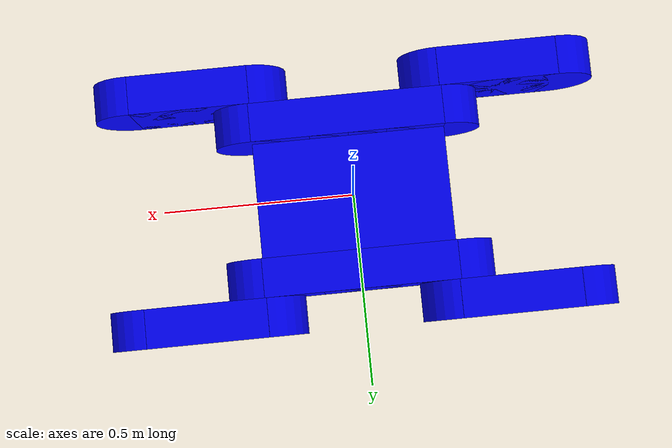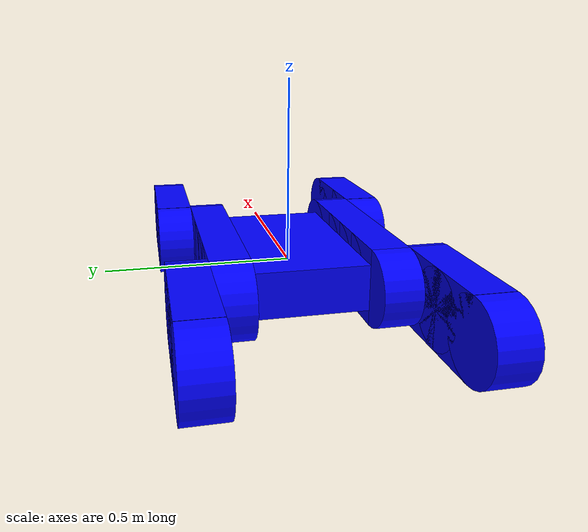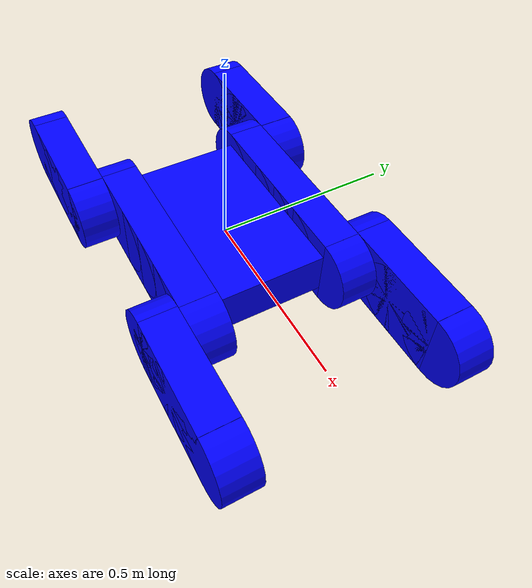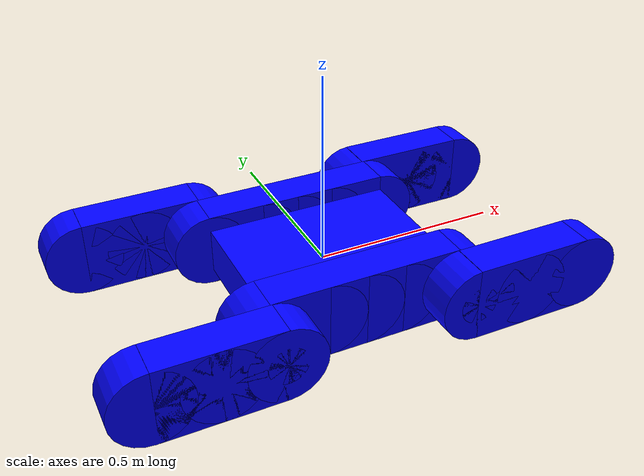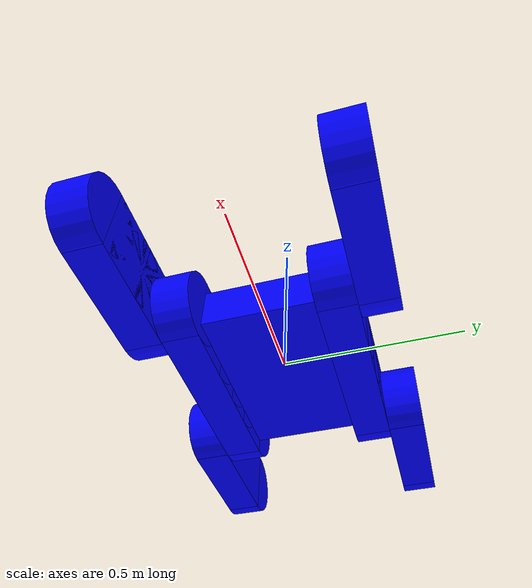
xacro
<?xml version="1.0"?>
<robot name="tank_robot" xmlns:xacro="http://www.ros.org/wiki/xacro">

  <!-- Подключаем базовую модель (шасси, колёса, флипперы и т.д.) -->
  <xacro:include filename="tank_robot_base.xacro"/>

  <!-- Подключаем описание ros2_control -->
  <xacro:include filename="tank_robot_ros2control.xacro"/>

</robot>

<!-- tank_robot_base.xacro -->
<robot name="tank_robot" xmlns:xacro="http://www.ros.org/wiki/xacro">
  <!-- 1) МАТЕРИАЛЫ                                  -->
    <material name="Gray">
    <color rgba="0.0 0.0 1.0 1.0"/>
  </material>
  <material name="Blue">
    <color rgba="0.0 0.0 1.0 1.0"/>
  </material>

  <!-- 2) МАКРОСЫ                                    -->
  <!--    - wheel_macro           Колесо базы       -->
  <!--    - flipper_base_macro    Основание флиппера-->
  <!--    - flippers_wheel_macro  Колёса на флиппере-->

  <xacro:macro name="wheel_macro" params="
    wheel_name
    parent_link
    xyz:='0 0 0'
    rpy:='-1.57 1.57 0'
    radius:='0.1'
    length:='0.1'
    mass:='0.10'
    ixx:='0.01'
    iyy:='0.01'
    izz:='0.01'
    ixy:='0.0'
    ixz='0.0'
    iyz='0.0'
  ">
    <!-- Звено колеса -->
    <link name="${wheel_name}">
      <visual>
        <geometry>
          <cylinder radius="${radius}" length="${length}"/>
        </geometry>
        <material name="Blue"/>
      </visual>
      <collision>
        <geometry>
          <cylinder radius="${radius}" length="${length}"/>
        </geometry>
      </collision>
      <inertial>
        <mass value="${mass}"/>
        <origin xyz="0 0 0" rpy="0 0 0"/>
        <inertia ixx="${ixx}" iyy="${iyy}" izz="${izz}" ixy="${ixy}" ixz="${ixz}" iyz="${iyz}"/>
      </inertial>
    </link>

    <!-- Джойнт колеса (ось вращения 0 0 1) -->
    <joint name="${wheel_name}_joint" type="continuous">
      <parent link="${parent_link}"/>
      <child link="${wheel_name}"/>
      <origin xyz="${xyz}" rpy="${rpy}"/>
      <axis xyz="0 0 1"/>
    </joint>

  </xacro:macro>

  <xacro:macro name="flipper_base_macro" params="
    wheel_name
    parent_link
    xyz:='0 0 0'
    rpy:='-1.57 0 0'
    radius:='0.05'
    length:='0.1'
    mass:='0.1'
    ixx:='0.00145833'
    iyy:='0.00145833'
    izz:='0.00125'
    ixy:='0.0'
    ixz:='0.0'
    iyz:='0.0'
  ">
    <!-- Звено основания флиппера -->
    <link name="${wheel_name}">
      <visual>
        <origin xyz="0 0 0" rpy="0 0 0"/>
        <geometry>
          <cylinder radius="${radius}" length="${length}"/>
        </geometry>
        <material name="Blue"/>
      </visual>
      <!-- (коллизию можно добавить, если нужно) -->
      <inertial>
        <mass value="${mass}"/>
      <origin xyz="${xyz}" rpy="${rpy}"/>
        <inertia ixx="${ixx}" iyy="${iyy}" izz="${izz}" ixy="${ixy}" ixz="${ixz}" iyz="${iyz}"/>
      </inertial>
    </link>

    <joint name="${wheel_name}_joint" type="continuous">
      <parent link="${parent_link}"/>
      <child link="${wheel_name}"/>
      <origin xyz="${xyz}" rpy="${rpy}"/>
      <axis xyz="0 0 1"/>
    </joint>
  </xacro:macro>

  <xacro:macro name="flippers_wheel_macro" params="
    wheel_name
    parent_link
    xyz:='0 0 0'
    rpy:='0 0 0'
    radius:='0.1'
    length:='0.1'
    mass:='0.10'
    ixx:='0.01'
    iyy:='0.01'
    izz:='0.01'
    ixy:='0.0'
    ixz:='0.0'
    iyz:='0.0'
  ">
    <!-- Звено колеса флиппера -->
    <link name="${wheel_name}">
      <visual>
        <origin xyz="0 0 0" rpy="0 0 0"/>
        <geometry>
          <cylinder radius="${radius}" length="${length}"/>
        </geometry>
        <material name="Blue"/>
      </visual>
      <collision>
        <origin xyz="0 0 0" rpy="0 0 0"/>
        <geometry>
          <cylinder radius="${radius}" length="${length}"/>
        </geometry>
      </collision>
      <inertial>
        <mass value="${mass}"/>
        <origin xyz="0 0 0" rpy="0 0 0"/>
        <inertia ixx="${ixx}" iyy="${iyy}" izz="${izz}" ixy="${ixy}" ixz="${ixz}" iyz="${iyz}"/>
      </inertial>
    </link>

    <joint name="${wheel_name}_joint" type="continuous">
      <parent link="${parent_link}"/>
      <child link="${wheel_name}"/>
      <origin xyz="${xyz}" rpy="${rpy}"/>
      <axis xyz="0 0 1"/>
    </joint>
  </xacro:macro>

  <!-- 3) КОРНЕВОЕ ЗВЕНО (base_link)                 -->

  <!-- 4) ШАССИ (chassis_link)                       -->
  <link name="chassis_link">
    <visual>
      <origin xyz="0 0 0" rpy="0 0 0"/>
      <geometry>
        <box size="0.5 0.3 0.12"/>
      </geometry>
      <material name="Gray"/>
    </visual>
    <collision>
      <origin xyz="0 0 0" rpy="0 0 0"/>
      <geometry>
        <box size="0.5 0.3 0.1"/>
      </geometry>
    </collision>
    <inertial>
      <mass value="50.0"/>
      <origin xyz="0 0 0" rpy="0 0 0"/>
      <inertia ixx="0.5" iyy="0.5" izz="0.5" ixy="0.0" ixz="0.0" iyz="0.0"/>
    </inertial>
  </link>

  <!-- Фиксируем chassis_link к base_link -->

  <!-- 5) ГУСЕНИЦЫ (визуальные треки слева/справа)   -->
  <link name="left_track_link">
    <visual>
      <origin xyz="0 0.2 0" rpy="0 0 0"/>
      <geometry>
        <box size="0.5 0.1 0.2"/>
      </geometry>
      <material name="Gray"/>
    </visual>
    <inertial>
      <mass value="1.0"/>
      <origin xyz="0 0 0" rpy="0 0 0"/>
      <inertia ixx="0.001" iyy="0.001" izz="0.001" ixy="0.0" ixz="0.0" iyz="0.0"/>
    </inertial>
  </link>
  <joint name="chassis_left_track" type="fixed">
    <parent link="chassis_link"/>
    <child link="left_track_link"/>
  </joint>

  <link name="right_track_link">
    <visual>
      <origin xyz="0 -0.2 0" rpy="0 0 0"/>
      <geometry>
        <box size="0.5 0.1 0.2"/>
      </geometry>
      <material name="Gray"/>
    </visual>
    <inertial>
      <mass value="1.0"/>
      <origin xyz="0 0 0" rpy="0 0 0"/>
      <inertia ixx="0.001" iyy="0.001" izz="0.001" ixy="0.0" ixz="0.0" iyz="0.0"/>
    </inertial>
  </link>
  <joint name="chassis_right_track" type="fixed">
    <parent link="chassis_link"/>
    <child link="right_track_link"/>
  </joint>

  <!-- 6) КОЛЕСА БАЗЫ (8 штук), вызываем wheel_macro -->
  <xacro:wheel_macro wheel_name="front_left_wheel"     parent_link="chassis_link" xyz="0.25 0.2 0.0"/>
  <xacro:wheel_macro wheel_name="front_left_mid_wheel" parent_link="chassis_link" xyz="0.1 0.2 0.0"/>
  <xacro:wheel_macro wheel_name="front_right_wheel"    parent_link="chassis_link" xyz="0.25 -0.2 0.0"/>
  <xacro:wheel_macro wheel_name="front_right_mid_wheel" parent_link="chassis_link" xyz="0.1 -0.2 0.0"/>

  <xacro:wheel_macro wheel_name="right_mid_wheel" parent_link="chassis_link" xyz="0.0 -0.2 0.0"/>
  <xacro:wheel_macro wheel_name="left_mid_wheel" parent_link="chassis_link" xyz="0.0 0.2 0.0"/>

  <xacro:wheel_macro wheel_name="rear_left_wheel"      parent_link="chassis_link" xyz="-0.25 0.2 0.0"/>
  <xacro:wheel_macro wheel_name="rear_left_mid_wheel"  parent_link="chassis_link" xyz="-0.1 0.2 0.0"/>
  <xacro:wheel_macro wheel_name="rear_right_wheel"     parent_link="chassis_link" xyz="-0.25 -0.2 0.0"/>
  <xacro:wheel_macro wheel_name="rear_right_mid_wheel" parent_link="chassis_link" xyz="-0.1 -0.2 0.0"/>

  <!-- 7) ОСНОВАНИЯ ФЛИППЕРОВ (4 штуки),             -->
  <!--    вызываем flipper_base_macro               -->
  <xacro:flipper_base_macro wheel_name="front_left_flipper"  parent_link="chassis_link" xyz="0.25 0.3 0.0"/>
  <xacro:flipper_base_macro wheel_name="front_right_flipper" parent_link="chassis_link" xyz="0.25 -0.3 0.0"/>
  <xacro:flipper_base_macro wheel_name="rear_left_flipper"   parent_link="chassis_link" xyz="-0.25 0.3 0.0"/>
  <xacro:flipper_base_macro wheel_name="rear_right_flipper"  parent_link="chassis_link" xyz="-0.25 -0.3 0.0"/>

  <!-- 8) ФЛИППЕРЫ - КОЛЁСА И ТРЕКИ (визуальные)      -->
  <!--    8.1) ЛЕВЫЙ ПЕРЕДНИЙ ФЛИППЕР                -->
  <xacro:flippers_wheel_macro wheel_name="front_left_3_flipper_wheel" parent_link="front_left_flipper" xyz="0.31 0.0 0.0"/>
  <xacro:flippers_wheel_macro wheel_name="front_left_2_flipper_wheel" parent_link="front_left_flipper" xyz="0.1505 0.0 0.0"/>
  <xacro:flippers_wheel_macro wheel_name="front_left_1_flipper_wheel" parent_link="front_left_flipper" xyz="0.0 0.0 0.0"/>

  <link name="left_front_track_flipper_link">
    <visual>
      <origin xyz="0.1505 0 0" rpy="0 0 0"/>
      <geometry>
        <box size="0.31 0.2 0.1"/>
      </geometry>
      <material name="Gray"/>
    </visual>
    <inertial>
      <mass value="1.0"/>
      <origin xyz="0 0 0" rpy="0 0 0"/>
      <inertia ixx="0.001" iyy="0.001" izz="0.001" ixy="0.0" ixz="0.0" iyz="0.0"/>
    </inertial>
  </link>
  <joint name="flipper_box_front_left_joint" type="fixed">
    <parent link="front_left_flipper"/>
    <child link="left_front_track_flipper_link"/>
  </joint>

  <!-- 8.2) ПРАВЫЙ ПЕРЕДНИЙ ФЛИППЕР -->
  <xacro:flippers_wheel_macro wheel_name="front_right_3_flipper_wheel" parent_link="front_right_flipper" xyz="0.31 0.0 0.0"/>
  <xacro:flippers_wheel_macro wheel_name="front_right_2_flipper_wheel" parent_link="front_right_flipper" xyz="0.1505 0.0 0.0"/>
  <xacro:flippers_wheel_macro wheel_name="front_right_1_flipper_wheel" parent_link="front_right_flipper" xyz="0.0 0.0 0.0"/>

  <link name="right_front_track_flipper_link">
    <visual>
      <origin xyz="0.1505 0 0" rpy="0 0 0"/>
      <geometry>
        <box size="0.31 0.2 0.1"/>
      </geometry>
      <material name="Gray"/>
    </visual>
    <inertial>
      <mass value="1.0"/>
      <origin xyz="0 0 0" rpy="0 0 0"/>
      <inertia ixx="0.001" iyy="0.001" izz="0.001" ixy="0.0" ixz="0.0" iyz="0.0"/>
    </inertial>
  </link>
  <joint name="flipper_box_front_right_joint" type="fixed">
    <parent link="front_right_flipper"/>
    <child link="right_front_track_flipper_link"/>
  </joint>

  <!-- 8.3) ЛЕВЫЙ ЗАДНИЙ ФЛИППЕР -->
  <xacro:flippers_wheel_macro wheel_name="rear_left_3_flipper_wheel" parent_link="rear_left_flipper" xyz="-0.31 0.0 0.0"/>
  <xacro:flippers_wheel_macro wheel_name="rear_left_2_flipper_wheel" parent_link="rear_left_flipper" xyz="-0.1505 0.0 0.0"/>
  <xacro:flippers_wheel_macro wheel_name="rear_left_1_flipper_wheel" parent_link="rear_left_flipper" xyz="0.0 0.0 0.0"/>

  <link name="left_rear_track_flipper_link">
    <visual>
      <origin xyz="-0.1505 0 0" rpy="0 0 0"/>
      <geometry>
        <box size="0.31 0.2 0.1"/>
      </geometry>
      <material name="Gray"/>
    </visual>
    <inertial>
      <mass value="1.0"/>
      <origin xyz="0 0 0" rpy="0 0 0"/>
      <inertia ixx="0.001" iyy="0.001" izz="0.001" ixy="0.0" ixz="0.0" iyz="0.0"/>
    </inertial>
  </link>
  <joint name="flipper_box_rear_left_joint" type="fixed">
    <parent link="rear_left_flipper"/>
    <child link="left_rear_track_flipper_link"/>
  </joint>

  <!-- 8.4) ПРАВЫЙ ЗАДНИЙ ФЛИППЕР -->
  <xacro:flippers_wheel_macro wheel_name="rear_right_3_flipper_wheel" parent_link="rear_right_flipper" xyz="-0.31 0.0 0.0"/>
  <xacro:flippers_wheel_macro wheel_name="rear_right_2_flipper_wheel" parent_link="rear_right_flipper" xyz="-0.1505 0.0 0.0"/>
  <xacro:flippers_wheel_macro wheel_name="rear_right_1_flipper_wheel" parent_link="rear_right_flipper" xyz="0.0 0.0 0.0"/>

  <link name="right_rear_track_flipper_link">
    <visual>
      <origin xyz="-0.1505 0 0" rpy="0 0 0"/>
      <geometry>
        <box size="0.31 0.2 0.1"/>
      </geometry>
      <material name="Gray"/>
    </visual>
    <inertial>
      <mass value="1.0"/>
      <origin xyz="0 0 0" rpy="0 0 0"/>
      <inertia ixx="0.001" iyy="0.001" izz="0.001" ixy="0.0" ixz="0.0" iyz="0.0"/>
    </inertial>
  </link>
  <joint name="flipper_box_rear_right_joint" type="fixed">
    <parent link="rear_right_flipper"/>
    <child link="right_rear_track_flipper_link"/>
  </joint>

<gazebo>

 <plugin name="trucked_vehicle_joint_state_pb" filename="libgazebo_ros_joint_state_publisher.so">
      <ros>

        <remapping>~/out:=joint_states</remapping>
      </ros>
      <update_rate>1000</update_rate>

      <joint_name>front_left_wheel_joint</joint_name>
      <joint_name>front_left_mid_wheel_joint</joint_name>
      <joint_name>rear_left_wheel_joint</joint_name>
      <joint_name>rear_left_mid_wheel_joint</joint_name>
      <joint_name>left_mid_wheel_joint</joint_name>

      <joint_name>front_right_wheel_joint</joint_name>
      <joint_name>front_right_mid_wheel_joint</joint_name>
      <joint_name>rear_right_wheel_joint</joint_name>
      <joint_name>rear_right_mid_wheel_joint</joint_name>
      <joint_name>right_mid_wheel_joint</joint_name>

      <joint_name>front_left_1_flipper_wheel_joint</joint_name>
      <joint_name>front_left_2_flipper_wheel_joint</joint_name>
      <joint_name>front_left_3_flipper_wheel_joint</joint_name>

      <joint_name>front_right_1_flipper_wheel_joint</joint_name>
      <joint_name>front_right_2_flipper_wheel_joint</joint_name>
      <joint_name>front_right_3_flipper_wheel_joint</joint_name>

      <joint_name>rear_left_1_flipper_wheel_joint</joint_name>
      <joint_name>rear_left_2_flipper_wheel_joint</joint_name>
      <joint_name>rear_left_3_flipper_wheel_joint</joint_name>

      <joint_name>rear_right_1_flipper_wheel_joint</joint_name>
      <joint_name>rear_right_2_flipper_wheel_joint</joint_name>
      <joint_name>rear_right_3_flipper_wheel_joint</joint_name>

    </plugin>
 </gazebo>

  <gazebo>
    <plugin name="diff_drive_controller_base" filename="libgazebo_ros_diff_drive.so">
      <num_wheel_pairs>5</num_wheel_pairs>
      <!-- Левая сторона -->
      <left_joint>front_left_wheel_joint</left_joint>
      <left_joint>front_left_mid_wheel_joint</left_joint>
      <left_joint>rear_left_wheel_joint</left_joint>
      <left_joint>rear_left_mid_wheel_joint</left_joint>
      <left_joint>left_mid_wheel_joint</left_joint>

      <!-- Правая сторона -->
      <right_joint>front_right_wheel_joint</right_joint>
      <right_joint>front_right_mid_wheel_joint</right_joint>
      <right_joint>rear_right_wheel_joint</right_joint>
      <right_joint>rear_right_mid_wheel_joint</right_joint>
      <right_joint>right_mid_wheel_joint</right_joint>

      <wheel_separation>0.6</wheel_separation>
      <wheel_diameter>0.14</wheel_diameter>
      <max_wheel_torque>500</max_wheel_torque>
      <max_wheel_acceleration>5.0</max_wheel_acceleration>
      <odometry_frame>odom</odometry_frame>
      <robot_base_frame>chassis_link</robot_base_frame>
       <publish_odom>true</publish_odom>
    </plugin>
  </gazebo>

  <!-- 9.2) Плагин для колёс флипперов (12 колёс) -->
  <gazebo>
    <plugin name="diff_drive_controller_flippers" filename="libgazebo_ros_diff_drive.so">
      <num_wheel_pairs>6</num_wheel_pairs>
      <!-- "Левая сторона" (в коде - часть флипперов) -->
      <left_joint>front_left_1_flipper_wheel_joint</left_joint>
      <left_joint>front_left_2_flipper_wheel_joint</left_joint>
      <left_joint>front_left_3_flipper_wheel_joint</left_joint>

      <left_joint>rear_left_1_flipper_wheel_joint</left_joint>
      <left_joint>rear_left_2_flipper_wheel_joint</left_joint>
      <left_joint>rear_left_3_flipper_wheel_joint</left_joint>

      <!-- "Правая сторона" (другая часть флипперов) -->
      <right_joint>front_right_1_flipper_wheel_joint</right_joint>
      <right_joint>front_right_2_flipper_wheel_joint</right_joint>
      <right_joint>front_right_3_flipper_wheel_joint</right_joint>

      <right_joint>rear_right_1_flipper_wheel_joint</right_joint>
      <right_joint>rear_right_2_flipper_wheel_joint</right_joint>
      <right_joint>rear_right_3_flipper_wheel_joint</right_joint>

      <wheel_separation>0.8</wheel_separation>
      <wheel_diameter>0.14</wheel_diameter>
      <max_wheel_torque>500</max_wheel_torque>
      <max_wheel_acceleration>5.0</max_wheel_acceleration>
    </plugin>
  </gazebo>

</robot>
